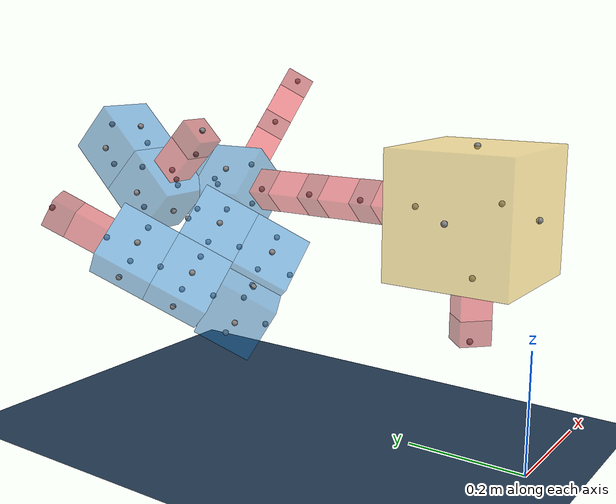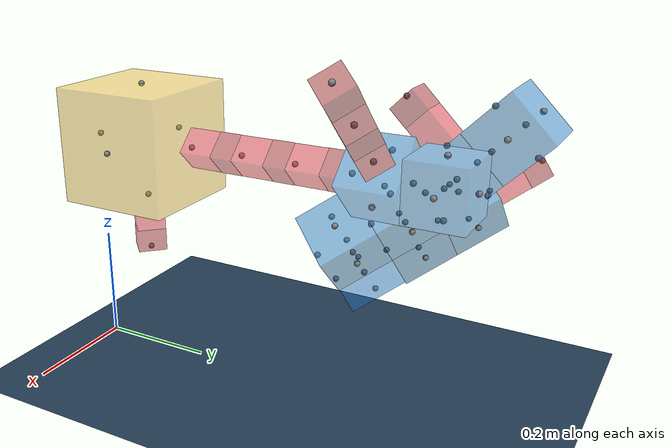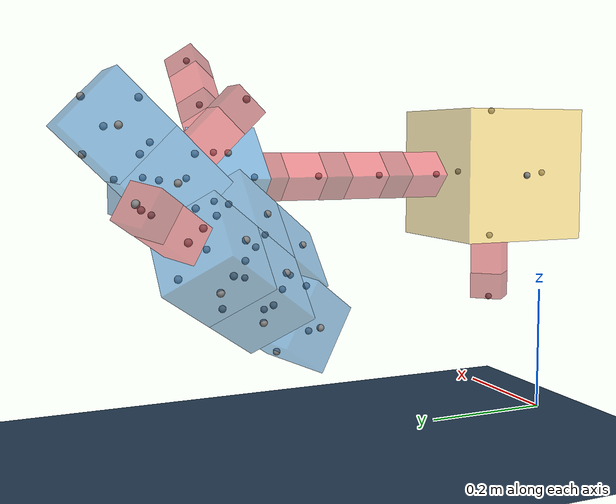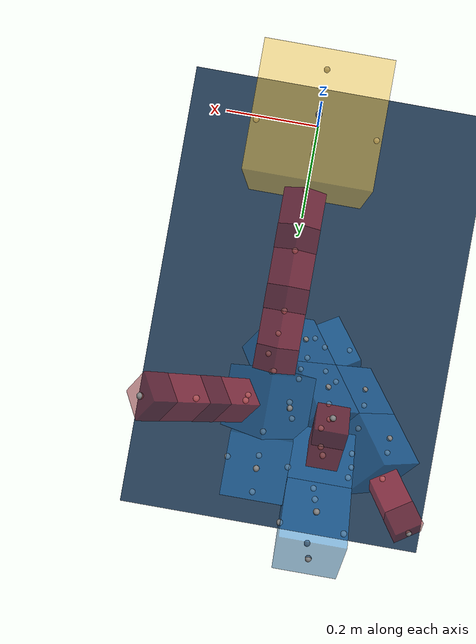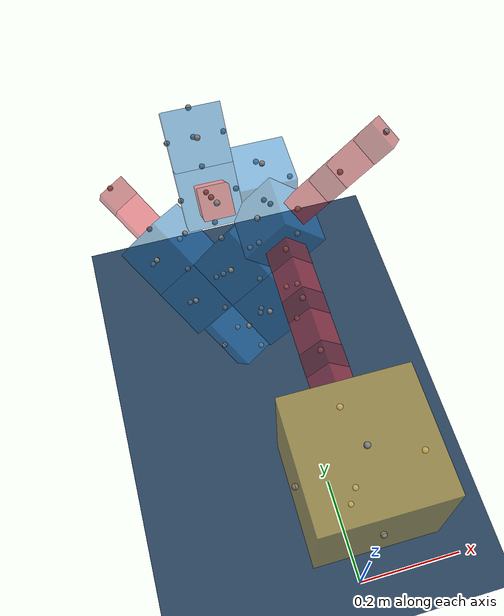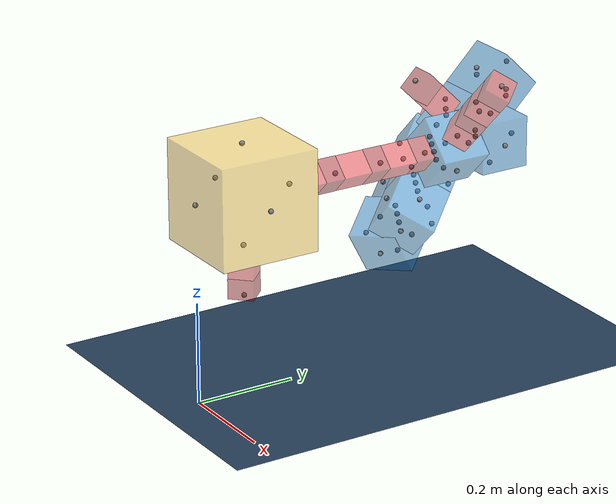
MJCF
<mujoco model="MuJoCo Model">
  <compiler angle="radian"/>

  <option integrator="implicitfast"/>

  <visual>
    <global offwidth="1280" offheight="960"/>
  </visual>

  <default>
    <default class="robot-main">
      <default class="robot-0-20-5-main"/>
      <default class="robot-0-18-0-main"/>
      <default class="robot-18-21-0-main"/>
      <default class="robot-21-3-0-main"/>
      <default class="robot-3-22-0-main"/>
      <default class="robot-22-10-3-main"/>
      <default class="robot-22-11-0-main"/>
      <default class="robot-22-23-2-main"/>
      <default class="robot-10-14-0-main"/>
      <default class="robot-11-12-3-main"/>
      <default class="robot-23-9-3-main"/>
      <default class="robot-23-19-0-main"/>
      <default class="robot-12-24-5-main"/>
      <default class="robot-12-8-2-main"/>
      <default class="robot-19-2-2-main"/>
      <default class="robot-19-15-3-main"/>
      <default class="robot-2-26-0-main"/>
    </default>
  </default>

  <asset>
    <texture type="2d" colorspace="auto" name="grid" builtin="checker" rgb1="0.1 0.2 0.3" rgb2="0.2 0.3 0.4" width="600" height="600"/>
    <material name="grid" texture="grid" texuniform="true" texrepeat="3 3" reflectance="0.2"/>
  </asset>

  <worldbody>
    <geom name="floor" size="1 1 0.1" type="plane" material="grid"/>
    <site pos="0 0 0.395339"/>
    <light name="light" pos="0 0 1" dir="0 0 -1" castshadow="false"/>
    <body name="robot-world" pos="0 0 0.395339">
      <joint type="free"/>
      <body name="robot-core">
        <geom name="robot-core" size="0.1 0.1 0.1" pos="0 0.1 0" type="box" mass="1" rgba="0.992157 0.792157 0.25098 0.5"/>
        <site name="robot-core-front" pos="0 0.2 0"/>
        <site name="robot-core-back" pos="0 0 0" quat="0 0 0 1"/>
        <site name="robot-core-left" pos="-0.1 0.1 0" quat="0.707107 0 0 0.707107"/>
        <site name="robot-core-right" pos="0.1 0.1 0" quat="-0.707107 0 0 0.707107"/>
        <site name="robot-core-top" pos="0 0.1 0.1" quat="0.707107 0.707107 0 0"/>
        <site name="robot-core-bottom" pos="0 0.1 -0.1" quat="0 0 -0.707107 0.707107"/>
        <body name="robot-0-20-5-hinge" pos="0 0.1 -0.1" quat="0.270759 -0.270759 -0.653215 0.653215">
          <body name="robot-0-20-5-stator" pos="0 0.03 0">
            <geom name="robot-0-20-5-stator" size="0.02475 0.0297 0.02475" type="box" mass="0.02" rgba="0.87451 0.160784 0.207843 0.5"/>
          </body>
          <body name="robot-0-20-5-rotor" pos="0 0.08 0">
            <joint name="robot-0-20-5-servo" pos="0 -0.02 0" axis="0 0 1"/>
            <geom name="robot-0-20-5-rotor" size="0.025 0.02 0.025" type="box" mass="0.04" rgba="0.627451 0.0941176 0.129412 0.5"/>
            <site name="robot-0-20-5-hinge-front" pos="0 0.02 0"/>
          </body>
        </body>
        <body name="robot-0-18-0-hinge" pos="0 0.2 0" quat="-0.382911 0 0.923785 0">
          <body name="robot-0-18-0-stator" pos="0 0.03 0">
            <geom name="robot-0-18-0-stator" size="0.02475 0.0297 0.02475" type="box" mass="0.02" rgba="0.87451 0.160784 0.207843 0.5"/>
          </body>
          <body name="robot-0-18-0-rotor" pos="0 0.08 0">
            <joint name="robot-0-18-0-servo" pos="0 -0.02 0" axis="0 0 1"/>
            <geom name="robot-0-18-0-rotor" size="0.025 0.02 0.025" type="box" mass="0.04" rgba="0.627451 0.0941176 0.129412 0.5"/>
            <site name="robot-0-18-0-hinge-front" pos="0 0.02 0"/>
            <body name="robot-18-21-0-hinge" pos="0 0.02 0">
              <body name="robot-18-21-0-stator" pos="0 0.03 0">
                <geom name="robot-18-21-0-stator" size="0.02475 0.0297 0.02475" type="box" mass="0.02" rgba="0.87451 0.160784 0.207843 0.5"/>
              </body>
              <body name="robot-18-21-0-rotor" pos="0 0.08 0">
                <joint name="robot-18-21-0-servo" pos="0 -0.02 0" axis="0 0 1"/>
                <geom name="robot-18-21-0-rotor" size="0.025 0.02 0.025" type="box" mass="0.04" rgba="0.627451 0.0941176 0.129412 0.5"/>
                <site name="robot-18-21-0-hinge-front" pos="0 0.02 0"/>
                <body name="robot-21-3-0-hinge" pos="0 0.02 0" quat="0 0 1 0">
                  <body name="robot-21-3-0-stator" pos="0 0.03 0">
                    <geom name="robot-21-3-0-stator" size="0.02475 0.0297 0.02475" type="box" mass="0.02" rgba="0.87451 0.160784 0.207843 0.5"/>
                  </body>
                  <body name="robot-21-3-0-rotor" pos="0 0.08 0">
                    <joint name="robot-21-3-0-servo" pos="0 -0.02 0" axis="0 0 1"/>
                    <geom name="robot-21-3-0-rotor" size="0.025 0.02 0.025" type="box" mass="0.04" rgba="0.627451 0.0941176 0.129412 0.5"/>
                    <site name="robot-21-3-0-hinge-front" pos="0 0.02 0"/>
                    <body name="robot-3-22-0-core" pos="0 0.02 0" quat="0.707107 0 0.707107 0">
                      <geom name="robot-3-22-0-core" size="0.05 0.05 0.05" pos="0 0.05 0" type="box" mass="0.055" rgba="0.109804 0.466667 0.764706 0.5"/>
                      <site name="robot-3-22-0-core-front" pos="0 0.1 0"/>
                      <site name="robot-3-22-0-core-left" pos="-0.05 0.05 0" quat="0.707107 0 0 0.707107"/>
                      <site name="robot-3-22-0-core-right" pos="0.05 0.05 0" quat="-0.707107 0 0 0.707107"/>
                      <site name="robot-3-22-0-core-top" pos="0 0.05 0.05" quat="0.707107 0.707107 0 0"/>
                      <site name="robot-3-22-0-core-bottom" pos="0 0.05 -0.05" quat="0 0 -0.707107 0.707107"/>
                      <body name="robot-22-10-3-hinge" pos="-0.05 0.05 0" quat="0.270759 -0.653215 0.653215 0.270759">
                        <body name="robot-22-10-3-stator" pos="0 0.03 0">
                          <geom name="robot-22-10-3-stator" size="0.02475 0.0297 0.02475" type="box" mass="0.02" rgba="0.87451 0.160784 0.207843 0.5"/>
                        </body>
                        <body name="robot-22-10-3-rotor" pos="0 0.08 0">
                          <joint name="robot-22-10-3-servo" pos="0 -0.02 0" axis="0 0 1"/>
                          <geom name="robot-22-10-3-rotor" size="0.025 0.02 0.025" type="box" mass="0.04" rgba="0.627451 0.0941176 0.129412 0.5"/>
                          <site name="robot-22-10-3-hinge-front" pos="0 0.02 0"/>
                          <body name="robot-10-14-0-hinge" pos="0 0.02 0" quat="0 0 1 0">
                            <body name="robot-10-14-0-stator" pos="0 0.03 0">
                              <geom name="robot-10-14-0-stator" size="0.02475 0.0297 0.02475" type="box" mass="0.02" rgba="0.87451 0.160784 0.207843 0.5"/>
                            </body>
                            <body name="robot-10-14-0-rotor" pos="0 0.08 0">
                              <joint name="robot-10-14-0-servo" pos="0 -0.02 0" axis="0 0 1"/>
                              <geom name="robot-10-14-0-rotor" size="0.025 0.02 0.025" type="box" mass="0.04" rgba="0.627451 0.0941176 0.129412 0.5"/>
                              <site name="robot-10-14-0-hinge-front" pos="0 0.02 0"/>
                            </body>
                          </body>
                        </body>
                      </body>
                      <body name="robot-22-11-0-core" pos="0 0.1 0" quat="-0.382911 0 0.923785 0">
                        <geom name="robot-22-11-0-core" size="0.05 0.05 0.05" pos="0 0.05 0" type="box" mass="0.055" rgba="0.109804 0.466667 0.764706 0.5"/>
                        <site name="robot-22-11-0-core-front" pos="0 0.1 0"/>
                        <site name="robot-22-11-0-core-left" pos="-0.05 0.05 0" quat="0.707107 0 0 0.707107"/>
                        <site name="robot-22-11-0-core-right" pos="0.05 0.05 0" quat="-0.707107 0 0 0.707107"/>
                        <site name="robot-22-11-0-core-top" pos="0 0.05 0.05" quat="0.707107 0.707107 0 0"/>
                        <site name="robot-22-11-0-core-bottom" pos="0 0.05 -0.05" quat="0 0 -0.707107 0.707107"/>
                        <body name="robot-11-12-3-core" pos="-0.05 0.05 0" quat="-0.270759 -0.653215 0.653215 -0.270759">
                          <geom name="robot-11-12-3-core" size="0.05 0.05 0.05" pos="0 0.05 0" type="box" mass="0.055" rgba="0.109804 0.466667 0.764706 0.5"/>
                          <site name="robot-11-12-3-core-front" pos="0 0.1 0"/>
                          <site name="robot-11-12-3-core-left" pos="-0.05 0.05 0" quat="0.707107 0 0 0.707107"/>
                          <site name="robot-11-12-3-core-right" pos="0.05 0.05 0" quat="-0.707107 0 0 0.707107"/>
                          <site name="robot-11-12-3-core-top" pos="0 0.05 0.05" quat="0.707107 0.707107 0 0"/>
                          <site name="robot-11-12-3-core-bottom" pos="0 0.05 -0.05" quat="0 0 -0.707107 0.707107"/>
                          <body name="robot-12-24-5-core" pos="0 0.05 -0.05" quat="0.5 -0.5 0.5 -0.5">
                            <geom name="robot-12-24-5-core" size="0.05 0.05 0.05" pos="0 0.05 0" type="box" mass="0.055" rgba="0.109804 0.466667 0.764706 0.5"/>
                            <site name="robot-12-24-5-core-front" pos="0 0.1 0"/>
                            <site name="robot-12-24-5-core-left" pos="-0.05 0.05 0" quat="0.707107 0 0 0.707107"/>
                            <site name="robot-12-24-5-core-right" pos="0.05 0.05 0" quat="-0.707107 0 0 0.707107"/>
                            <site name="robot-12-24-5-core-top" pos="0 0.05 0.05" quat="0.707107 0.707107 0 0"/>
                            <site name="robot-12-24-5-core-bottom" pos="0 0.05 -0.05" quat="0 0 -0.707107 0.707107"/>
                          </body>
                          <body name="robot-12-8-2-hinge" pos="0.05 0.05 0" quat="0 -0.707107 -0.707107 0">
                            <body name="robot-12-8-2-stator" pos="0 0.03 0">
                              <geom name="robot-12-8-2-stator" size="0.02475 0.0297 0.02475" type="box" mass="0.02" rgba="0.87451 0.160784 0.207843 0.5"/>
                            </body>
                            <body name="robot-12-8-2-rotor" pos="0 0.08 0">
                              <joint name="robot-12-8-2-servo" pos="0 -0.02 0" axis="0 0 1"/>
                              <geom name="robot-12-8-2-rotor" size="0.025 0.02 0.025" type="box" mass="0.04" rgba="0.627451 0.0941176 0.129412 0.5"/>
                              <site name="robot-12-8-2-hinge-front" pos="0 0.02 0"/>
                            </body>
                          </body>
                        </body>
                      </body>
                      <body name="robot-22-23-2-core" pos="0.05 0.05 0" quat="-0.270759 -0.653215 -0.653215 0.270759">
                        <geom name="robot-22-23-2-core" size="0.05 0.05 0.05" pos="0 0.05 0" type="box" mass="0.055" rgba="0.109804 0.466667 0.764706 0.5"/>
                        <site name="robot-22-23-2-core-front" pos="0 0.1 0"/>
                        <site name="robot-22-23-2-core-left" pos="-0.05 0.05 0" quat="0.707107 0 0 0.707107"/>
                        <site name="robot-22-23-2-core-right" pos="0.05 0.05 0" quat="-0.707107 0 0 0.707107"/>
                        <site name="robot-22-23-2-core-top" pos="0 0.05 0.05" quat="0.707107 0.707107 0 0"/>
                        <site name="robot-22-23-2-core-bottom" pos="0 0.05 -0.05" quat="0 0 -0.707107 0.707107"/>
                        <body name="robot-23-9-3-core" pos="-0.05 0.05 0" quat="0.5 -0.5 0.5 0.5">
                          <geom name="robot-23-9-3-core" size="0.05 0.05 0.05" pos="0 0.05 0" type="box" mass="0.055" rgba="0.109804 0.466667 0.764706 0.5"/>
                          <site name="robot-23-9-3-core-front" pos="0 0.1 0"/>
                          <site name="robot-23-9-3-core-left" pos="-0.05 0.05 0" quat="0.707107 0 0 0.707107"/>
                          <site name="robot-23-9-3-core-right" pos="0.05 0.05 0" quat="-0.707107 0 0 0.707107"/>
                          <site name="robot-23-9-3-core-top" pos="0 0.05 0.05" quat="0.707107 0.707107 0 0"/>
                          <site name="robot-23-9-3-core-bottom" pos="0 0.05 -0.05" quat="0 0 -0.707107 0.707107"/>
                        </body>
                        <body name="robot-23-19-0-core" pos="0 0.1 0">
                          <geom name="robot-23-19-0-core" size="0.05 0.05 0.05" pos="0 0.05 0" type="box" mass="0.055" rgba="0.109804 0.466667 0.764706 0.5"/>
                          <site name="robot-23-19-0-core-front" pos="0 0.1 0"/>
                          <site name="robot-23-19-0-core-left" pos="-0.05 0.05 0" quat="0.707107 0 0 0.707107"/>
                          <site name="robot-23-19-0-core-right" pos="0.05 0.05 0" quat="-0.707107 0 0 0.707107"/>
                          <site name="robot-23-19-0-core-top" pos="0 0.05 0.05" quat="0.707107 0.707107 0 0"/>
                          <site name="robot-23-19-0-core-bottom" pos="0 0.05 -0.05" quat="0 0 -0.707107 0.707107"/>
                          <body name="robot-19-2-2-core" pos="0.05 0.05 0" quat="-0.707107 0 0 0.707107">
                            <geom name="robot-19-2-2-core" size="0.05 0.05 0.05" pos="0 0.05 0" type="box" mass="0.055" rgba="0.109804 0.466667 0.764706 0.5"/>
                            <site name="robot-19-2-2-core-front" pos="0 0.1 0"/>
                            <site name="robot-19-2-2-core-left" pos="-0.05 0.05 0" quat="0.707107 0 0 0.707107"/>
                            <site name="robot-19-2-2-core-right" pos="0.05 0.05 0" quat="-0.707107 0 0 0.707107"/>
                            <site name="robot-19-2-2-core-top" pos="0 0.05 0.05" quat="0.707107 0.707107 0 0"/>
                            <site name="robot-19-2-2-core-bottom" pos="0 0.05 -0.05" quat="0 0 -0.707107 0.707107"/>
                            <body name="robot-2-26-0-hinge" pos="0 0.1 0" quat="-0.382911 0 0.923785 0">
                              <body name="robot-2-26-0-stator" pos="0 0.03 0">
                                <geom name="robot-2-26-0-stator" size="0.02475 0.0297 0.02475" type="box" mass="0.02" rgba="0.87451 0.160784 0.207843 0.5"/>
                              </body>
                              <body name="robot-2-26-0-rotor" pos="0 0.08 0">
                                <joint name="robot-2-26-0-servo" pos="0 -0.02 0" axis="0 0 1"/>
                                <geom name="robot-2-26-0-rotor" size="0.025 0.02 0.025" type="box" mass="0.04" rgba="0.627451 0.0941176 0.129412 0.5"/>
                                <site name="robot-2-26-0-hinge-front" pos="0 0.02 0"/>
                              </body>
                            </body>
                          </body>
                          <body name="robot-19-15-3-core" pos="-0.05 0.05 0" quat="0.653215 -0.270759 0.270759 0.653215">
                            <geom name="robot-19-15-3-core" size="0.05 0.05 0.05" pos="0 0.05 0" type="box" mass="0.055" rgba="0.109804 0.466667 0.764706 0.5"/>
                            <site name="robot-19-15-3-core-front" pos="0 0.1 0"/>
                            <site name="robot-19-15-3-core-left" pos="-0.05 0.05 0" quat="0.707107 0 0 0.707107"/>
                            <site name="robot-19-15-3-core-right" pos="0.05 0.05 0" quat="-0.707107 0 0 0.707107"/>
                            <site name="robot-19-15-3-core-top" pos="0 0.05 0.05" quat="0.707107 0.707107 0 0"/>
                            <site name="robot-19-15-3-core-bottom" pos="0 0.05 -0.05" quat="0 0 -0.707107 0.707107"/>
                          </body>
                        </body>
                      </body>
                    </body>
                  </body>
                </body>
              </body>
            </body>
          </body>
        </body>
      </body>
    </body>
  </worldbody>

  <contact>
    <exclude body1="robot-0-20-5-stator" body2="robot-0-20-5-rotor"/>
    <exclude body1="robot-0-18-0-stator" body2="robot-0-18-0-rotor"/>
    <exclude body1="robot-18-21-0-stator" body2="robot-18-21-0-rotor"/>
    <exclude body1="robot-21-3-0-stator" body2="robot-21-3-0-rotor"/>
    <exclude body1="robot-22-10-3-stator" body2="robot-22-10-3-rotor"/>
    <exclude body1="robot-10-14-0-stator" body2="robot-10-14-0-rotor"/>
    <exclude body1="robot-12-8-2-stator" body2="robot-12-8-2-rotor"/>
    <exclude body1="robot-2-26-0-stator" body2="robot-2-26-0-rotor"/>
  </contact>

  <actuator>
    <general name="robot-0-20-5-servo" joint="robot-0-20-5-servo" ctrlrange="-3.14159 -3.14159" dynprm="0 0 0 0 0 0 0 0 0 0" biastype="affine" biasprm="0 -1 -1"/>
    <general name="robot-0-18-0-servo" joint="robot-0-18-0-servo" ctrlrange="-3.14159 -3.14159" dynprm="0 0 0 0 0 0 0 0 0 0" biastype="affine" biasprm="0 -1 -1"/>
    <general name="robot-18-21-0-servo" joint="robot-18-21-0-servo" ctrlrange="-3.14159 -3.14159" dynprm="0 0 0 0 0 0 0 0 0 0" biastype="affine" biasprm="0 -1 -1"/>
    <general name="robot-21-3-0-servo" joint="robot-21-3-0-servo" ctrlrange="-3.14159 -3.14159" dynprm="0 0 0 0 0 0 0 0 0 0" biastype="affine" biasprm="0 -1 -1"/>
    <general name="robot-22-10-3-servo" joint="robot-22-10-3-servo" ctrlrange="-3.14159 -3.14159" dynprm="0 0 0 0 0 0 0 0 0 0" biastype="affine" biasprm="0 -1 -1"/>
    <general name="robot-10-14-0-servo" joint="robot-10-14-0-servo" ctrlrange="-3.14159 -3.14159" dynprm="0 0 0 0 0 0 0 0 0 0" biastype="affine" biasprm="0 -1 -1"/>
    <general name="robot-12-8-2-servo" joint="robot-12-8-2-servo" ctrlrange="-3.14159 -3.14159" dynprm="0 0 0 0 0 0 0 0 0 0" biastype="affine" biasprm="0 -1 -1"/>
    <general name="robot-2-26-0-servo" joint="robot-2-26-0-servo" ctrlrange="-3.14159 -3.14159" dynprm="0 0 0 0 0 0 0 0 0 0" biastype="affine" biasprm="0 -1 -1"/>
  </actuator>
</mujoco>
